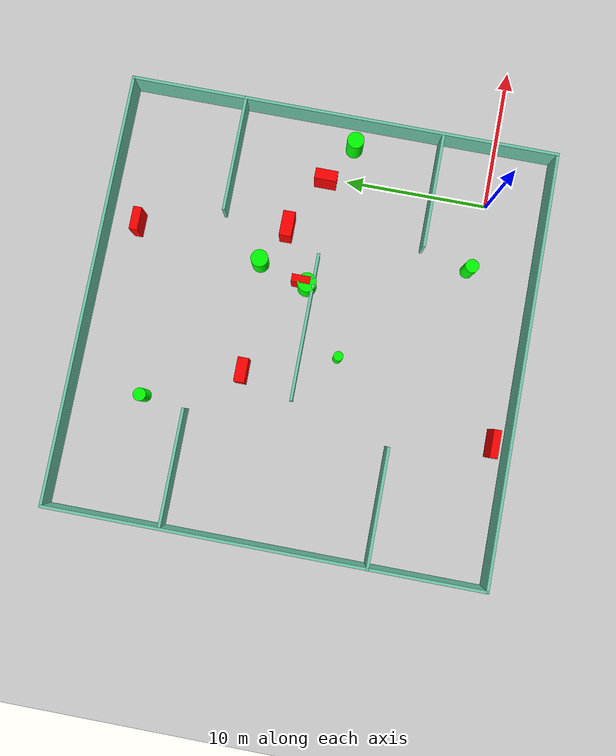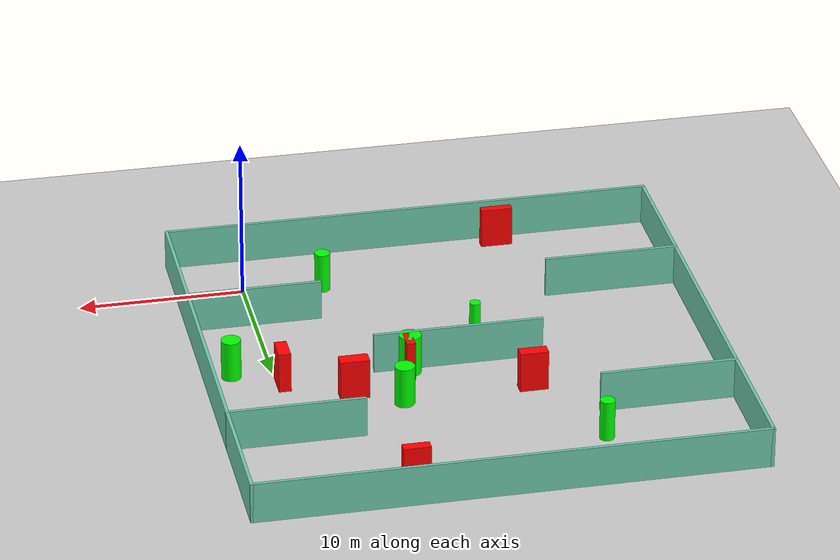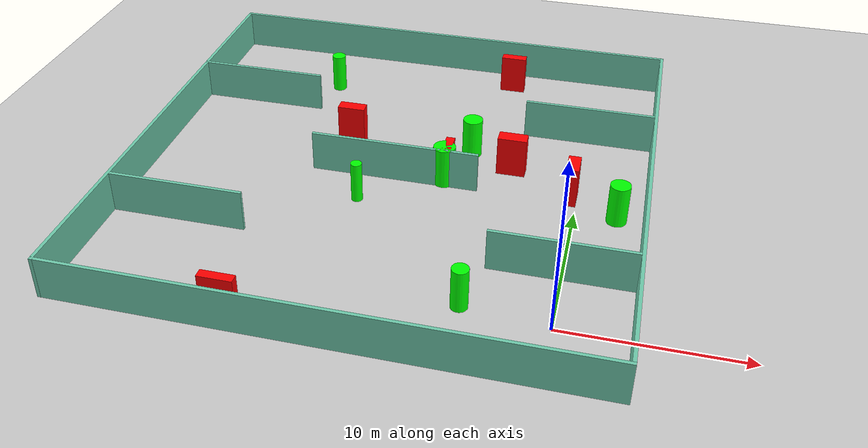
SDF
<sdf version="1.7">
 <world name="default">
  <light name="sun" type="directional">
   <pose>0 0 10 0 -0 0</pose>
   <diffuse>0.8 0.8 0.8 1</diffuse>
   <specular>0.2 0.2 0.2 1</specular>
   <attenuation>
    <range>1000</range>
    <constant>0.9</constant>
    <linear>0.01</linear>
    <quadratic>0.001</quadratic>
   </attenuation>
   <direction>-0.5 0.1 -0.9</direction>
   <spot><inner_angle>0</inner_angle><outer_angle>0</outer_angle><falloff>0</falloff></spot>
  </light>
  <model name="ground_plane">
   <static>1</static>
   <link name="link">
    <collision name="collision">
     <geometry><plane><normal>0 0 1</normal><size>100 100</size></plane></geometry>
     <surface>
      <contact><collide_bitmask>65535</collide_bitmask></contact>
      <friction><ode><mu>100</mu><mu2>50</mu2></ode></friction>
     </surface>
    </collision>
    <visual name="visual">
     <cast_shadows>0</cast_shadows>
     <geometry><plane><normal>0 0 1</normal><size>100 100</size></plane></geometry>
     <material>
      <script><uri>file://media/materials/scripts/gazebo.material</uri><name>Gazebo/Grey</name></script>
     </material>
    </visual>
   </link>
  </model>
  <gravity>0 0 -9.8</gravity>
  <magnetic_field>6e-06 2.3e-05 -4.2e-05</magnetic_field>
  <atmosphere type="adiabatic"/>
  <physics type="ode">
   <max_step_size>0.001</max_step_size>
   <real_time_factor>1</real_time_factor>
   <real_time_update_rate>1000</real_time_update_rate>
  </physics>
  <scene><ambient>0.4 0.4 0.4 1</ambient><background>0.7 0.7 0.7 1</background><shadows>1</shadows></scene>
  <spherical_coordinates>
   <surface_model>EARTH_WGS84</surface_model>
   <latitude_deg>0</latitude_deg>
   <longitude_deg>0</longitude_deg>
   <elevation>0</elevation>
   <heading_deg>0</heading_deg>
  </spherical_coordinates>
  <model name="my_base_walls">
   <link name="Wall_10">
    <collision name="Wall_10_Collision">
     <geometry><box><size>8.2 0.2 2.5</size></box></geometry>
     <pose>0 0 1.25 0 -0 0</pose>
    </collision>
    <visual name="Wall_10_Visual">
     <pose>0 0 1.25 0 -0 0</pose>
     <geometry><box><size>8.2 0.2 2.5</size></box></geometry>
     <material>
      <script><uri>file://media/materials/scripts/gazebo.material</uri><name>Gazebo/Grey</name></script>
      <ambient>0.435294 0.796078 0.67451 1</ambient>
     </material>
     <meta><layer>0</layer></meta>
    </visual>
    <pose>-11 -7 0 0 -0 0</pose>
   </link>
   <link name="Wall_12">
    <collision name="Wall_12_Collision">
     <geometry><box><size>8.2 0.2 2.5</size></box></geometry>
     <pose>0 0 1.25 0 -0 0</pose>
    </collision>
    <visual name="Wall_12_Visual">
     <pose>0 0 1.25 0 -0 0</pose>
     <geometry><box><size>8.2 0.2 2.5</size></box></geometry>
     <material>
      <script><uri>file://media/materials/scripts/gazebo.material</uri><name>Gazebo/Grey</name></script>
      <ambient>0.435294 0.796078 0.67451 1</ambient>
     </material>
     <meta><layer>0</layer></meta>
    </visual>
    <pose>-11 7 0 0 -0 0</pose>
   </link>
   <link name="Wall_14">
    <collision name="Wall_14_Collision">
     <geometry><box><size>8.2 0.2 2.5</size></box></geometry>
     <pose>0 0 1.25 0 -0 0</pose>
    </collision>
    <visual name="Wall_14_Visual">
     <pose>0 0 1.25 0 -0 0</pose>
     <geometry><box><size>8.2 0.2 2.5</size></box></geometry>
     <material>
      <script><uri>file://media/materials/scripts/gazebo.material</uri><name>Gazebo/Grey</name></script>
      <ambient>0.435294 0.796078 0.67451 1</ambient>
     </material>
     <meta><layer>0</layer></meta>
    </visual>
    <pose>11 7 0 0 -0 3.14159</pose>
   </link>
   <link name="Wall_16">
    <collision name="Wall_16_Collision">
     <geometry><box><size>10.2 0.2 2.5</size></box></geometry>
     <pose>0 0 1.25 0 -0 0</pose>
    </collision>
    <visual name="Wall_16_Visual">
     <pose>0 0 1.25 0 -0 0</pose>
     <geometry><box><size>10.2 0.2 2.5</size></box></geometry>
     <material>
      <script><uri>file://media/materials/scripts/gazebo.material</uri><name>Gazebo/Grey</name></script>
      <ambient>0.435294 0.796078 0.67451 1</ambient>
     </material>
     <meta><layer>0</layer></meta>
    </visual>
    <pose>0 0 0 0 -0 3.14159</pose>
   </link>
   <link name="Wall_2">
    <collision name="Wall_2_Collision">
     <geometry><box><size>30.2 0.2 2.5</size></box></geometry>
     <pose>0 0 1.25 0 -0 0</pose>
    </collision>
    <visual name="Wall_2_Visual">
     <pose>0 0 1.25 0 -0 0</pose>
     <geometry><box><size>30.2 0.2 2.5</size></box></geometry>
     <material>
      <script><uri>file://media/materials/scripts/gazebo.material</uri><name>Gazebo/Grey</name></script>
      <ambient>0.435294 0.796078 0.67451 1</ambient>
     </material>
     <meta><layer>0</layer></meta>
    </visual>
    <pose>0 -15 0 0 -0 3.14159</pose>
   </link>
   <link name="Wall_3">
    <collision name="Wall_3_Collision">
     <geometry><box><size>30.2 0.2 2.5</size></box></geometry>
     <pose>0 0 1.25 0 -0 0</pose>
    </collision>
    <visual name="Wall_3_Visual">
     <pose>0 0 1.25 0 -0 0</pose>
     <geometry><box><size>30.2 0.2 2.5</size></box></geometry>
     <material>
      <script><uri>file://media/materials/scripts/gazebo.material</uri><name>Gazebo/Grey</name></script>
      <ambient>0.435294 0.796078 0.67451 1</ambient>
     </material>
     <meta><layer>0</layer></meta>
    </visual>
    <pose>-15 0 0 0 -0 1.5708</pose>
   </link>
   <link name="Wall_4">
    <collision name="Wall_4_Collision">
     <geometry><box><size>30.2 0.2 2.5</size></box></geometry>
     <pose>0 0 1.25 0 -0 0</pose>
    </collision>
    <visual name="Wall_4_Visual">
     <pose>0 0 1.25 0 -0 0</pose>
     <geometry><box><size>30.2 0.2 2.5</size></box></geometry>
     <material>
      <script><uri>file://media/materials/scripts/gazebo.material</uri><name>Gazebo/Grey</name></script>
      <ambient>0.435294 0.796078 0.67451 1</ambient>
     </material>
     <meta><layer>0</layer></meta>
    </visual>
    <pose>0 15 0 0 -0 0</pose>
   </link>
   <link name="Wall_6">
    <collision name="Wall_6_Collision">
     <geometry><box><size>30.2 0.2 2.5</size></box></geometry>
     <pose>0 0 1.25 0 -0 0</pose>
    </collision>
    <visual name="Wall_6_Visual">
     <pose>0 0 1.25 0 -0 0</pose>
     <geometry><box><size>30.2 0.2 2.5</size></box></geometry>
     <material>
      <script><uri>file://media/materials/scripts/gazebo.material</uri><name>Gazebo/Grey</name></script>
      <ambient>0.435294 0.796078 0.67451 1</ambient>
     </material>
     <meta><layer>0</layer></meta>
    </visual>
    <pose>15 0 0 0 -0 1.5708</pose>
   </link>
   <link name="Wall_8">
    <collision name="Wall_8_Collision">
     <geometry><box><size>8.2 0.2 2.5</size></box></geometry>
     <pose>0 0 1.25 0 -0 0</pose>
    </collision>
    <visual name="Wall_8_Visual">
     <pose>0 0 1.25 0 -0 0</pose>
     <geometry><box><size>8.2 0.2 2.5</size></box></geometry>
     <material>
      <script><uri>file://media/materials/scripts/gazebo.material</uri><name>Gazebo/Grey</name></script>
      <ambient>0.435294 0.796078 0.67451 1</ambient>
     </material>
     <meta><layer>0</layer></meta>
    </visual>
    <pose>11 -7 0 0 -0 3.14159</pose>
   </link>
   <static>1</static>
   <pose>-11 11 0 0 -0 0</pose>
  </model>
  <model name="cylinder1">
   <static>1</static>
   <link name="link">
    <inertial>
     <mass>1</mass>
     <inertia><ixx>0.5</ixx><ixy>0</ixy><ixz>0</ixz><iyy>0.5</iyy><iyz>0</iyz><izz>1</izz></inertia>
    </inertial>
    <collision name="collision">
     <geometry><cylinder><radius>0.3334940992649855</radius><length>2.5</length></cylinder></geometry>
    </collision>
    <visual name="visual">
     <geometry><cylinder><radius>0.3334940992649855</radius><length>2.5</length></cylinder></geometry>
     <material>
      <ambient>0 1 0 1</ambient>
      <diffuse>0 1 0 1</diffuse>
      <specular>0.1 0.1 0.1 1</specular>
      <emissive>0 0 0 0</emissive>
     </material>
    </visual>
   </link>
   <pose>-12.571522721382236 8.40487311232031 1.25 0 0 0</pose>
  </model>
  <model name="cylinder2">
   <static>1</static>
   <link name="link">
    <inertial>
     <mass>1</mass>
     <inertia><ixx>0.5</ixx><ixy>0</ixy><ixz>0</ixz><iyy>0.5</iyy><iyz>0</iyz><izz>1</izz></inertia>
    </inertial>
    <collision name="collision">
     <geometry><cylinder><radius>0.6688264521566853</radius><length>2.5</length></cylinder></geometry>
    </collision>
    <visual name="visual">
     <geometry><cylinder><radius>0.6688264521566853</radius><length>2.5</length></cylinder></geometry>
     <material>
      <ambient>0 1 0 1</ambient>
      <diffuse>0 1 0 1</diffuse>
      <specular>0.1 0.1 0.1 1</specular>
      <emissive>0 0 0 0</emissive>
     </material>
    </visual>
   </link>
   <pose>-8.00672130714986 11.423181291541976 1.25 0 0 0</pose>
  </model>
  <model name="cylinder3">
   <static>1</static>
   <link name="link">
    <inertial>
     <mass>1</mass>
     <inertia><ixx>0.5</ixx><ixy>0</ixy><ixz>0</ixz><iyy>0.5</iyy><iyz>0</iyz><izz>1</izz></inertia>
    </inertial>
    <collision name="collision">
     <geometry><cylinder><radius>0.44281873877899414</radius><length>2.5</length></cylinder></geometry>
    </collision>
    <visual name="visual">
     <geometry><cylinder><radius>0.44281873877899414</radius><length>2.5</length></cylinder></geometry>
     <material>
      <ambient>0 1 0 1</ambient>
      <diffuse>0 1 0 1</diffuse>
      <specular>0.1 0.1 0.1 1</specular>
      <emissive>0 0 0 0</emissive>
     </material>
    </visual>
   </link>
   <pose>-17.557567650880543 21.065599676031763 1.25 0 0 0</pose>
  </model>
  <model name="cylinder4">
   <static>1</static>
   <link name="link">
    <inertial>
     <mass>1</mass>
     <inertia><ixx>0.5</ixx><ixy>0</ixy><ixz>0</ixz><iyy>0.5</iyy><iyz>0</iyz><izz>1</izz></inertia>
    </inertial>
    <collision name="collision">
     <geometry><cylinder><radius>0.4731929000075875</radius><length>2.5</length></cylinder></geometry>
    </collision>
    <visual name="visual">
     <geometry><cylinder><radius>0.4731929000075875</radius><length>2.5</length></cylinder></geometry>
     <material>
      <ambient>0 1 0 1</ambient>
      <diffuse>0 1 0 1</diffuse>
      <specular>0.1 0.1 0.1 1</specular>
      <emissive>0 0 0 0</emissive>
     </material>
    </visual>
   </link>
   <pose>-4.81527298554766 0.5464634721726305 1.25 0 0 0</pose>
  </model>
  <model name="cylinder5">
   <static>1</static>
   <link name="link">
    <inertial>
     <mass>1</mass>
     <inertia><ixx>0.5</ixx><ixy>0</ixy><ixz>0</ixz><iyy>0.5</iyy><iyz>0</iyz><izz>1</izz></inertia>
    </inertial>
    <collision name="collision">
     <geometry><cylinder><radius>0.6037157182718605</radius><length>2.5</length></cylinder></geometry>
    </collision>
    <visual name="visual">
     <geometry><cylinder><radius>0.6037157182718605</radius><length>2.5</length></cylinder></geometry>
     <material>
      <ambient>0 1 0 1</ambient>
      <diffuse>0 1 0 1</diffuse>
      <specular>0.1 0.1 0.1 1</specular>
      <emissive>0 0 0 0</emissive>
     </material>
    </visual>
   </link>
   <pose>-6.968079612510341 14.921558464178482 1.25 0 0 0</pose>
  </model>
  <model name="cylinder6">
   <static>1</static>
   <link name="link">
    <inertial>
     <mass>1</mass>
     <inertia><ixx>0.5</ixx><ixy>0</ixy><ixz>0</ixz><iyy>0.5</iyy><iyz>0</iyz><izz>1</izz></inertia>
    </inertial>
    <collision name="collision">
     <geometry><cylinder><radius>0.5914619295022521</radius><length>2.5</length></cylinder></geometry>
    </collision>
    <visual name="visual">
     <geometry><cylinder><radius>0.5914619295022521</radius><length>2.5</length></cylinder></geometry>
     <material>
      <ambient>0 1 0 1</ambient>
      <diffuse>0 1 0 1</diffuse>
      <specular>0.1 0.1 0.1 1</specular>
      <emissive>0 0 0 0</emissive>
     </material>
    </visual>
   </link>
   <pose>2.4070034089165446 9.92658432662886 1.25 0 0 0</pose>
  </model>
  <model name="box1">
   <static>1</static>
   <link name="link">
    <inertial>
     <mass>1</mass>
     <inertia><ixx>0.083</ixx><ixy>0</ixy><ixz>0</ixz><iyy>0.083</iyy><iyz>0</iyz><izz>0.083</izz></inertia>
    </inertial>
    <collision name="collision">
     <geometry><box><size>0.5262633981625913 1.3020674309013893 2.5</size></box></geometry>
    </collision>
    <visual name="visual">
     <geometry><box><size>0.5262633981625913 1.3020674309013893 2.5</size></box></geometry>
     <material>
      <ambient>1 0 0 1</ambient>
      <diffuse>1 0 0 1</diffuse>
      <specular>0.1 0.1 0.1 1</specular>
      <emissive>0 0 0 0</emissive>
     </material>
    </visual>
    <sensor name="my_contact" type="contact">
     <contact><collision>box_collision</collision><topic>__default_topic__</topic></contact>
    </sensor>
   </link>
   <pose>-7.857059454887686 11.867227633391115 1.25 0 0 0</pose>
  </model>
  <model name="box2">
   <static>1</static>
   <link name="link">
    <inertial>
     <mass>1</mass>
     <inertia><ixx>0.083</ixx><ixy>0</ixy><ixz>0</ixz><iyy>0.083</iyy><iyz>0</iyz><izz>0.083</izz></inertia>
    </inertial>
    <collision name="collision">
     <geometry><box><size>1.6921552377054556 0.7485817264236796 2.5</size></box></geometry>
    </collision>
    <visual name="visual">
     <geometry><box><size>1.6921552377054556 0.7485817264236796 2.5</size></box></geometry>
     <material>
      <ambient>1 0 0 1</ambient>
      <diffuse>1 0 0 1</diffuse>
      <specular>0.1 0.1 0.1 1</specular>
      <emissive>0 0 0 0</emissive>
     </material>
    </visual>
    <sensor name="my_contact" type="contact">
     <contact><collision>box_collision</collision><topic>__default_topic__</topic></contact>
    </sensor>
   </link>
   <pose>-14.673934601391789 14.681278892729608 1.25 0 0 0</pose>
  </model>
  <model name="box3">
   <static>1</static>
   <link name="link">
    <inertial>
     <mass>1</mass>
     <inertia><ixx>0.083</ixx><ixy>0</ixy><ixz>0</ixz><iyy>0.083</iyy><iyz>0</iyz><izz>0.083</izz></inertia>
    </inertial>
    <collision name="collision">
     <geometry><box><size>1.7453122666292267 0.8494886589307793 2.5</size></box></geometry>
    </collision>
    <visual name="visual">
     <geometry><box><size>1.7453122666292267 0.8494886589307793 2.5</size></box></geometry>
     <material>
      <ambient>1 0 0 1</ambient>
      <diffuse>1 0 0 1</diffuse>
      <specular>0.1 0.1 0.1 1</specular>
      <emissive>0 0 0 0</emissive>
     </material>
    </visual>
    <sensor name="my_contact" type="contact">
     <contact><collision>box_collision</collision><topic>__default_topic__</topic></contact>
    </sensor>
   </link>
   <pose>-4.2415632279500635 13.50494923021601 1.25 0 0 0</pose>
  </model>
  <model name="box4">
   <static>1</static>
   <link name="link">
    <inertial>
     <mass>1</mass>
     <inertia><ixx>0.083</ixx><ixy>0</ixy><ixz>0</ixz><iyy>0.083</iyy><iyz>0</iyz><izz>0.083</izz></inertia>
    </inertial>
    <collision name="collision">
     <geometry><box><size>1.9248899194353604 0.5325320330284641 2.5</size></box></geometry>
    </collision>
    <visual name="visual">
     <geometry><box><size>1.9248899194353604 0.5325320330284641 2.5</size></box></geometry>
     <material>
      <ambient>1 0 0 1</ambient>
      <diffuse>1 0 0 1</diffuse>
      <specular>0.1 0.1 0.1 1</specular>
      <emissive>0 0 0 0</emissive>
     </material>
    </visual>
    <sensor name="my_contact" type="contact">
     <contact><collision>box_collision</collision><topic>__default_topic__</topic></contact>
    </sensor>
   </link>
   <pose>-16.403890039442466 -2.9763249707780104 1.25 0 0 0</pose>
  </model>
  <model name="box5">
   <static>1</static>
   <link name="link">
    <inertial>
     <mass>1</mass>
     <inertia><ixx>0.083</ixx><ixy>0</ixy><ixz>0</ixz><iyy>0.083</iyy><iyz>0</iyz><izz>0.083</izz></inertia>
    </inertial>
    <collision name="collision">
     <geometry><box><size>0.738520417788993 1.5713361879293661 2.5</size></box></geometry>
    </collision>
    <visual name="visual">
     <geometry><box><size>0.738520417788993 1.5713361879293661 2.5</size></box></geometry>
     <material>
      <ambient>1 0 0 1</ambient>
      <diffuse>1 0 0 1</diffuse>
      <specular>0.1 0.1 0.1 1</specular>
      <emissive>0 0 0 0</emissive>
     </material>
    </visual>
    <sensor name="my_contact" type="contact">
     <contact><collision>box_collision</collision><topic>__default_topic__</topic></contact>
    </sensor>
   </link>
   <pose>-0.381455776447865 11.491710379647985 1.25 0 0 0</pose>
  </model>
  <model name="box6">
   <static>1</static>
   <link name="link">
    <inertial>
     <mass>1</mass>
     <inertia><ixx>0.083</ixx><ixy>0</ixy><ixz>0</ixz><iyy>0.083</iyy><iyz>0</iyz><izz>0.083</izz></inertia>
    </inertial>
    <collision name="collision">
     <geometry><box><size>1.6136310194758978 0.5919863246022554 2.5</size></box></geometry>
    </collision>
    <visual name="visual">
     <geometry><box><size>1.6136310194758978 0.5919863246022554 2.5</size></box></geometry>
     <material>
      <ambient>1 0 0 1</ambient>
      <diffuse>1 0 0 1</diffuse>
      <specular>0.1 0.1 0.1 1</specular>
      <emissive>0 0 0 0</emissive>
     </material>
    </visual>
    <sensor name="my_contact" type="contact">
     <contact><collision>box_collision</collision><topic>__default_topic__</topic></contact>
    </sensor>
   </link>
   <pose>-5.806939610737128 23.82493617637981 1.25 0 0 0</pose>
  </model>
 </world>
</sdf>
